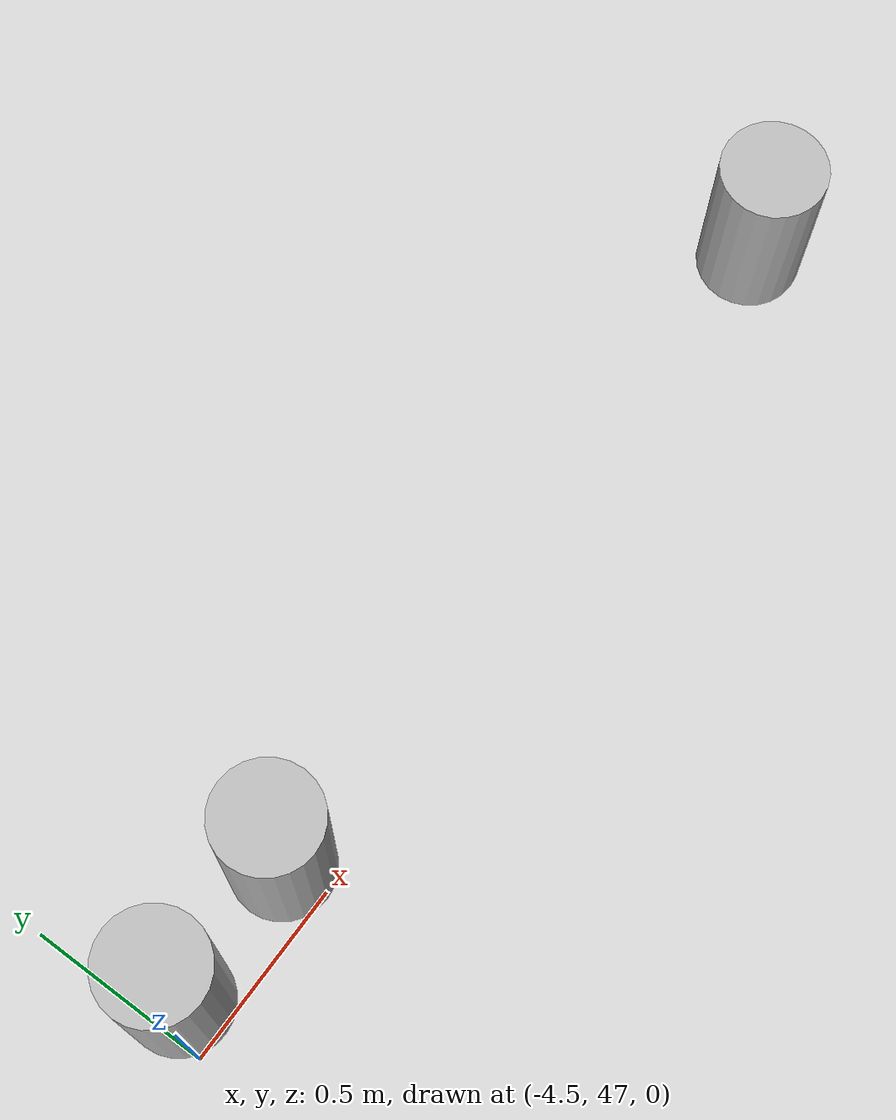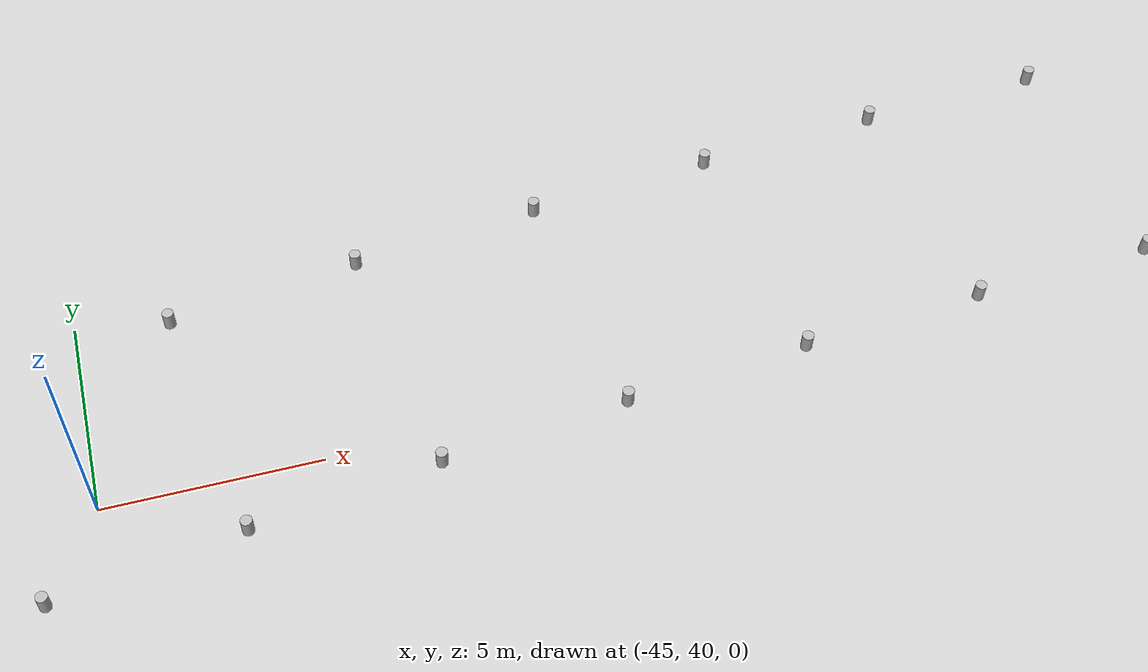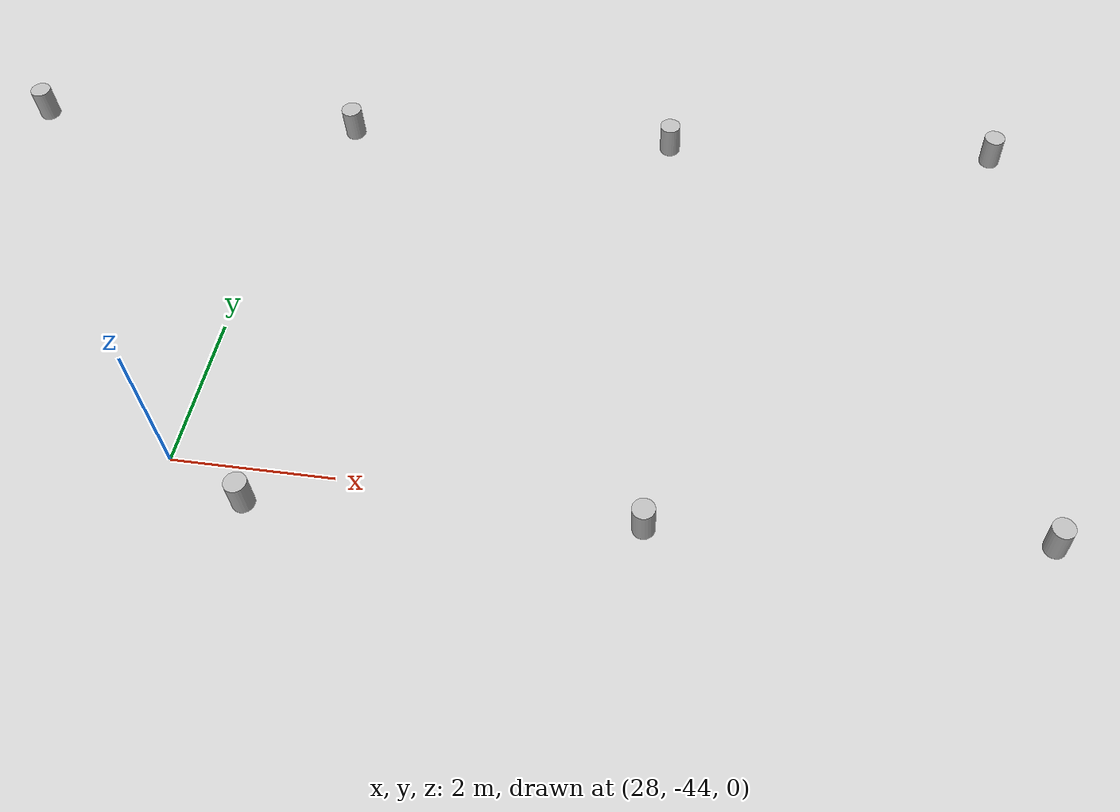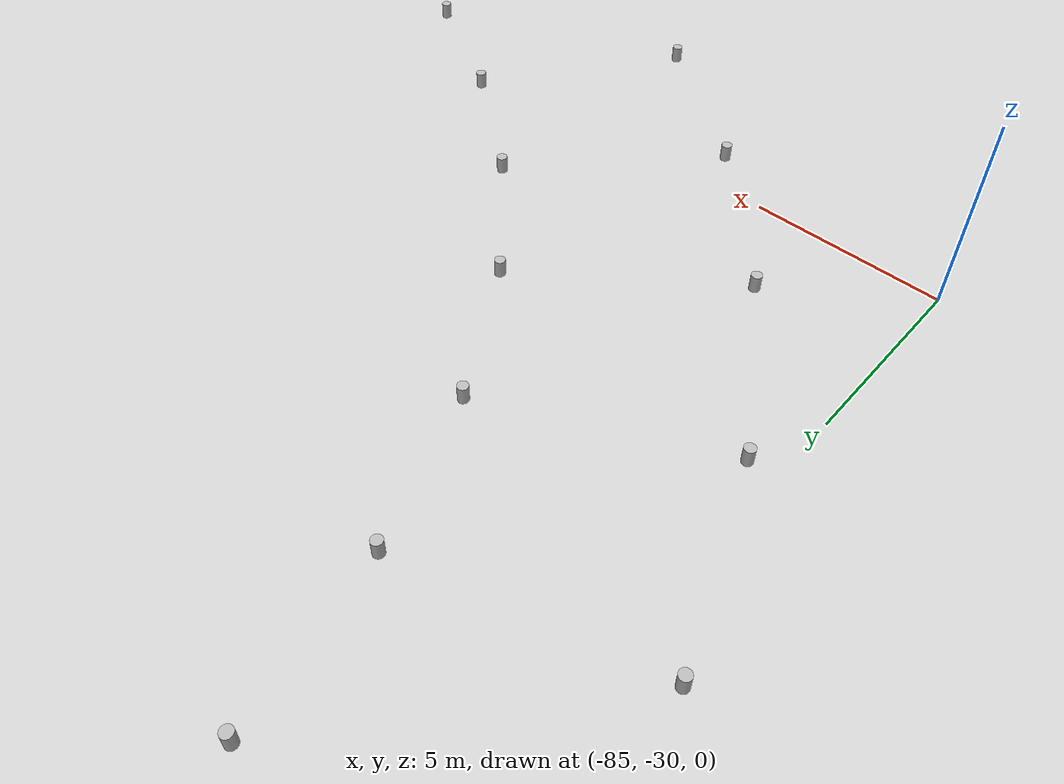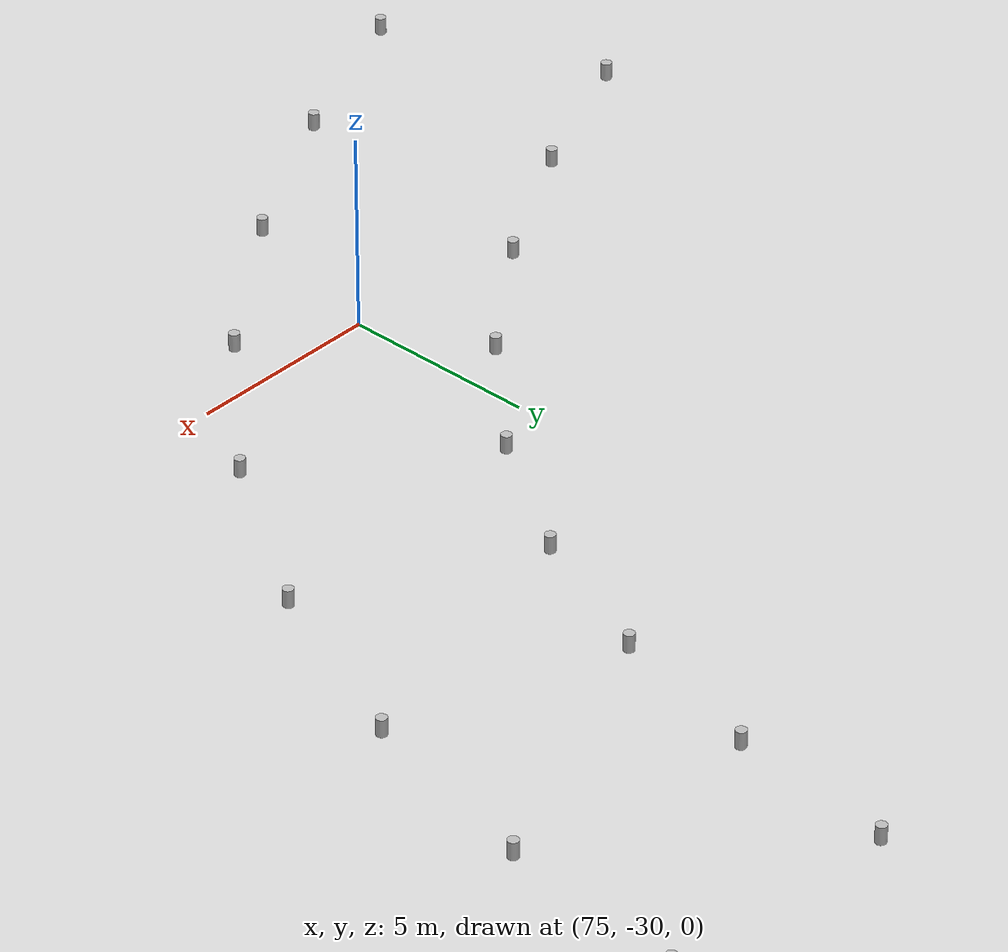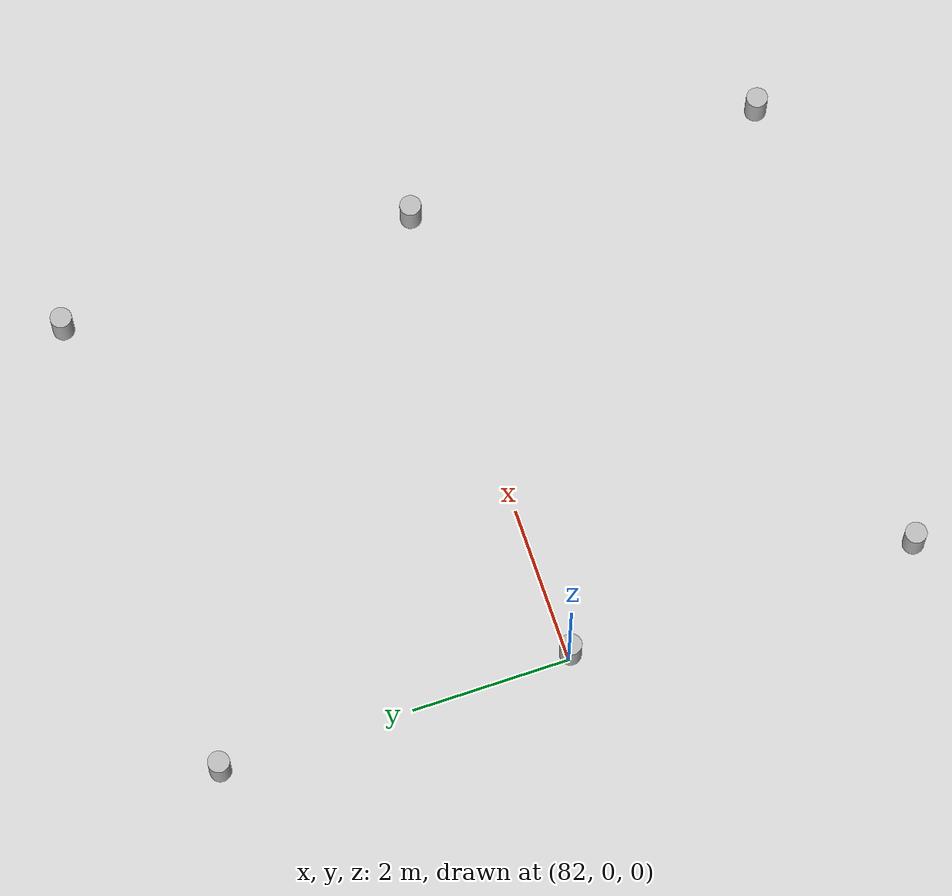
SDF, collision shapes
<?xml version='1.0'?>
<sdf version='1.6'>
  <model name='track'>

    <include>
      <pose>82.00025 -0.01351 0.225 0 0 0</pose>
      <uri>model://blue_cone</uri>
      <name>blue_cone_0</name>

      <covariance x="0.000196" y="0.000196" xy="0.0"/>

    </include>

    <include>
      <pose>81.98064 4.43128 0.225 0 0 0</pose>
      <uri>model://blue_cone</uri>
      <name>blue_cone_1</name>

      <covariance x="0.000196" y="0.000196" xy="0.0"/>

    </include>

    <include>
      <pose>81.81954 8.76029 0.225 0 0 0</pose>
      <uri>model://blue_cone</uri>
      <name>blue_cone_2</name>

      <covariance x="0.000196" y="0.000196" xy="0.0"/>

    </include>

    <include>
      <pose>81.35126 12.93457 0.225 0 0 0</pose>
      <uri>model://blue_cone</uri>
      <name>blue_cone_3</name>

      <covariance x="0.000196" y="0.000196" xy="0.0"/>

    </include>

    <include>
      <pose>80.41732 16.89663 0.225 0 0 0</pose>
      <uri>model://blue_cone</uri>
      <name>blue_cone_4</name>

      <covariance x="0.000196" y="0.000196" xy="0.0"/>

    </include>

    <include>
      <pose>78.89856 20.56983 0.225 0 0 0</pose>
      <uri>model://blue_cone</uri>
      <name>blue_cone_5</name>

      <covariance x="0.000196" y="0.000196" xy="0.0"/>

    </include>

    <include>
      <pose>76.75078 23.87936 0.225 0 0 0</pose>
      <uri>model://blue_cone</uri>
      <name>blue_cone_6</name>

      <covariance x="0.000196" y="0.000196" xy="0.0"/>

    </include>

    <include>
      <pose>74.01745 26.7798 0.225 0 0 0</pose>
      <uri>model://blue_cone</uri>
      <name>blue_cone_7</name>

      <covariance x="0.000196" y="0.000196" xy="0.0"/>

    </include>

    <include>
      <pose>70.8021 29.26676 0.225 0 0 0</pose>
      <uri>model://blue_cone</uri>
      <name>blue_cone_8</name>

      <covariance x="0.000196" y="0.000196" xy="0.0"/>

    </include>

    <include>
      <pose>67.22381 31.36861 0.225 0 0 0</pose>
      <uri>model://blue_cone</uri>
      <name>blue_cone_9</name>

      <covariance x="0.000196" y="0.000196" xy="0.0"/>

    </include>

    <include>
      <pose>63.3862 33.13107 0.225 0 0 0</pose>
      <uri>model://blue_cone</uri>
      <name>blue_cone_10</name>

      <covariance x="0.000196" y="0.000196" xy="0.0"/>

    </include>

    <include>
      <pose>59.36732 34.6042 0.225 0 0 0</pose>
      <uri>model://blue_cone</uri>
      <name>blue_cone_11</name>

      <covariance x="0.000196" y="0.000196" xy="0.0"/>

    </include>

    <include>
      <pose>55.22191 35.83482 0.225 0 0 0</pose>
      <uri>model://blue_cone</uri>
      <name>blue_cone_12</name>

      <covariance x="0.000196" y="0.000196" xy="0.0"/>

    </include>

    <include>
      <pose>50.98743 36.86356 0.225 0 0 0</pose>
      <uri>model://blue_cone</uri>
      <name>blue_cone_13</name>

      <covariance x="0.000196" y="0.000196" xy="0.0"/>

    </include>

    <include>
      <pose>46.68943 37.72441 0.225 0 0 0</pose>
      <uri>model://blue_cone</uri>
      <name>blue_cone_14</name>

      <covariance x="0.000196" y="0.000196" xy="0.0"/>

    </include>

    <include>
      <pose>42.34562 38.44522 0.225 0 0 0</pose>
      <uri>model://blue_cone</uri>
      <name>blue_cone_15</name>

      <covariance x="0.000196" y="0.000196" xy="0.0"/>

    </include>

    <include>
      <pose>37.96845 39.04848 0.225 0 0 0</pose>
      <uri>model://blue_cone</uri>
      <name>blue_cone_16</name>

      <covariance x="0.000196" y="0.000196" xy="0.0"/>

    </include>

    <include>
      <pose>33.5669 39.55201 0.225 0 0 0</pose>
      <uri>model://blue_cone</uri>
      <name>blue_cone_17</name>

      <covariance x="0.000196" y="0.000196" xy="0.0"/>

    </include>

    <include>
      <pose>29.14755 39.96956 0.225 0 0 0</pose>
      <uri>model://blue_cone</uri>
      <name>blue_cone_18</name>

      <covariance x="0.000196" y="0.000196" xy="0.0"/>

    </include>

    <include>
      <pose>24.71527 40.31142 0.225 0 0 0</pose>
      <uri>model://blue_cone</uri>
      <name>blue_cone_19</name>

      <covariance x="0.000196" y="0.000196" xy="0.0"/>

    </include>

    <include>
      <pose>20.27365 40.58507 0.225 0 0 0</pose>
      <uri>model://blue_cone</uri>
      <name>blue_cone_20</name>

      <covariance x="0.000196" y="0.000196" xy="0.0"/>

    </include>

    <include>
      <pose>15.8252 40.79595 0.225 0 0 0</pose>
      <uri>model://blue_cone</uri>
      <name>blue_cone_21</name>

      <covariance x="0.000196" y="0.000196" xy="0.0"/>

    </include>

    <include>
      <pose>11.37151 40.94831 0.225 0 0 0</pose>
      <uri>model://blue_cone</uri>
      <name>blue_cone_22</name>

      <covariance x="0.000196" y="0.000196" xy="0.0"/>

    </include>

    <include>
      <pose>6.91346 41.04604 0.225 0 0 0</pose>
      <uri>model://blue_cone</uri>
      <name>blue_cone_23</name>

      <covariance x="0.000196" y="0.000196" xy="0.0"/>

    </include>

    <include>
      <pose>2.4514 41.09349 0.225 0 0 0</pose>
      <uri>model://blue_cone</uri>
      <name>blue_cone_24</name>

      <covariance x="0.000196" y="0.000196" xy="0.0"/>

    </include>

    <include>
      <pose>-2.01274 41.09562 0.225 0 0 0</pose>
      <uri>model://blue_cone</uri>
      <name>blue_cone_25</name>

      <covariance x="0.000196" y="0.000196" xy="0.0"/>

    </include>

    <include>
      <pose>-6.47515 41.05285 0.225 0 0 0</pose>
      <uri>model://blue_cone</uri>
      <name>blue_cone_26</name>

      <covariance x="0.000196" y="0.000196" xy="0.0"/>

    </include>

    <include>
      <pose>-10.93361 40.96026 0.225 0 0 0</pose>
      <uri>model://blue_cone</uri>
      <name>blue_cone_27</name>

      <covariance x="0.000196" y="0.000196" xy="0.0"/>

    </include>

    <include>
      <pose>-15.38775 40.81345 0.225 0 0 0</pose>
      <uri>model://blue_cone</uri>
      <name>blue_cone_28</name>

      <covariance x="0.000196" y="0.000196" xy="0.0"/>

    </include>

    <include>
      <pose>-19.83678 40.6085 0.225 0 0 0</pose>
      <uri>model://blue_cone</uri>
      <name>blue_cone_29</name>

      <covariance x="0.000196" y="0.000196" xy="0.0"/>

    </include>

    <include>
      <pose>-24.27916 40.34123 0.225 0 0 0</pose>
      <uri>model://blue_cone</uri>
      <name>blue_cone_30</name>

      <covariance x="0.000196" y="0.000196" xy="0.0"/>

    </include>

    <include>
      <pose>-28.7125 40.00637 0.225 0 0 0</pose>
      <uri>model://blue_cone</uri>
      <name>blue_cone_31</name>

      <covariance x="0.000196" y="0.000196" xy="0.0"/>

    </include>

    <include>
      <pose>-33.13331 39.59666 0.225 0 0 0</pose>
      <uri>model://blue_cone</uri>
      <name>blue_cone_32</name>

      <covariance x="0.000196" y="0.000196" xy="0.0"/>

    </include>

    <include>
      <pose>-37.53687 39.10213 0.225 0 0 0</pose>
      <uri>model://blue_cone</uri>
      <name>blue_cone_33</name>

      <covariance x="0.000196" y="0.000196" xy="0.0"/>

    </include>

    <include>
      <pose>-41.91679 38.50938 0.225 0 0 0</pose>
      <uri>model://blue_cone</uri>
      <name>blue_cone_34</name>

      <covariance x="0.000196" y="0.000196" xy="0.0"/>

    </include>

    <include>
      <pose>-46.26437 37.80104 0.225 0 0 0</pose>
      <uri>model://blue_cone</uri>
      <name>blue_cone_35</name>

      <covariance x="0.000196" y="0.000196" xy="0.0"/>

    </include>

    <include>
      <pose>-50.56754 36.9551 0.225 0 0 0</pose>
      <uri>model://blue_cone</uri>
      <name>blue_cone_36</name>

      <covariance x="0.000196" y="0.000196" xy="0.0"/>

    </include>

    <include>
      <pose>-54.80925 35.94426 0.225 0 0 0</pose>
      <uri>model://blue_cone</uri>
      <name>blue_cone_37</name>

      <covariance x="0.000196" y="0.000196" xy="0.0"/>

    </include>

    <include>
      <pose>-58.96484 34.73516 0.225 0 0 0</pose>
      <uri>model://blue_cone</uri>
      <name>blue_cone_38</name>

      <covariance x="0.000196" y="0.000196" xy="0.0"/>

    </include>

    <include>
      <pose>-62.99825 33.28785 0.225 0 0 0</pose>
      <uri>model://blue_cone</uri>
      <name>blue_cone_39</name>

      <covariance x="0.000196" y="0.000196" xy="0.0"/>

    </include>

    <include>
      <pose>-66.85671 31.55603 0.225 0 0 0</pose>
      <uri>model://blue_cone</uri>
      <name>blue_cone_40</name>

      <covariance x="0.000196" y="0.000196" xy="0.0"/>

    </include>

    <include>
      <pose>-70.46469 29.48971 0.225 0 0 0</pose>
      <uri>model://blue_cone</uri>
      <name>blue_cone_41</name>

      <covariance x="0.000196" y="0.000196" xy="0.0"/>

    </include>

    <include>
      <pose>-73.72089 27.04226 0.225 0 0 0</pose>
      <uri>model://blue_cone</uri>
      <name>blue_cone_42</name>

      <covariance x="0.000196" y="0.000196" xy="0.0"/>

    </include>

    <include>
      <pose>-76.50676 24.18289 0.225 0 0 0</pose>
      <uri>model://blue_cone</uri>
      <name>blue_cone_43</name>

      <covariance x="0.000196" y="0.000196" xy="0.0"/>

    </include>

    <include>
      <pose>-78.71531 20.9122 0.225 0 0 0</pose>
      <uri>model://blue_cone</uri>
      <name>blue_cone_44</name>

      <covariance x="0.000196" y="0.000196" xy="0.0"/>

    </include>

    <include>
      <pose>-80.29538 17.27172 0.225 0 0 0</pose>
      <uri>model://blue_cone</uri>
      <name>blue_cone_45</name>

      <covariance x="0.000196" y="0.000196" xy="0.0"/>

    </include>

    <include>
      <pose>-81.28247 13.33446 0.225 0 0 0</pose>
      <uri>model://blue_cone</uri>
      <name>blue_cone_46</name>

      <covariance x="0.000196" y="0.000196" xy="0.0"/>

    </include>

    <include>
      <pose>-81.78985 9.1781 0.225 0 0 0</pose>
      <uri>model://blue_cone</uri>
      <name>blue_cone_47</name>

      <covariance x="0.000196" y="0.000196" xy="0.0"/>

    </include>

    <include>
      <pose>-81.9737 4.86237 0.225 0 0 0</pose>
      <uri>model://blue_cone</uri>
      <name>blue_cone_48</name>

      <covariance x="0.000196" y="0.000196" xy="0.0"/>

    </include>

    <include>
      <pose>-82.00024 0.43756 0.225 0 0 0</pose>
      <uri>model://blue_cone</uri>
      <name>blue_cone_49</name>

      <covariance x="0.000196" y="0.000196" xy="0.0"/>

    </include>

    <include>
      <pose>-81.9856 -3.99829 0.225 0 0 0</pose>
      <uri>model://blue_cone</uri>
      <name>blue_cone_50</name>

      <covariance x="0.000196" y="0.000196" xy="0.0"/>

    </include>

    <include>
      <pose>-81.84407 -8.33887 0.225 0 0 0</pose>
      <uri>model://blue_cone</uri>
      <name>blue_cone_51</name>

      <covariance x="0.000196" y="0.000196" xy="0.0"/>

    </include>

    <include>
      <pose>-81.40951 -12.52701 0.225 0 0 0</pose>
      <uri>model://blue_cone</uri>
      <name>blue_cone_52</name>

      <covariance x="0.000196" y="0.000196" xy="0.0"/>

    </include>

    <include>
      <pose>-80.51937 -16.50525 0.225 0 0 0</pose>
      <uri>model://blue_cone</uri>
      <name>blue_cone_53</name>

      <covariance x="0.000196" y="0.000196" xy="0.0"/>

    </include>

    <include>
      <pose>-79.04684 -20.195 0.225 0 0 0</pose>
      <uri>model://blue_cone</uri>
      <name>blue_cone_54</name>

      <covariance x="0.000196" y="0.000196" xy="0.0"/>

    </include>

    <include>
      <pose>-76.93836 -23.51671 0.225 0 0 0</pose>
      <uri>model://blue_cone</uri>
      <name>blue_cone_55</name>

      <covariance x="0.000196" y="0.000196" xy="0.0"/>

    </include>

    <include>
      <pose>-74.23096 -26.41901 0.225 0 0 0</pose>
      <uri>model://blue_cone</uri>
      <name>blue_cone_56</name>

      <covariance x="0.000196" y="0.000196" xy="0.0"/>

    </include>

    <include>
      <pose>-71.0273 -28.89294 0.225 0 0 0</pose>
      <uri>model://blue_cone</uri>
      <name>blue_cone_57</name>

      <covariance x="0.000196" y="0.000196" xy="0.0"/>

    </include>

    <include>
      <pose>-67.44948 -30.96449 0.225 0 0 0</pose>
      <uri>model://blue_cone</uri>
      <name>blue_cone_58</name>

      <covariance x="0.000196" y="0.000196" xy="0.0"/>

    </include>

    <include>
      <pose>-63.60525 -32.67864 0.225 0 0 0</pose>
      <uri>model://blue_cone</uri>
      <name>blue_cone_59</name>

      <covariance x="0.000196" y="0.000196" xy="0.0"/>

    </include>

    <include>
      <pose>-59.57604 -34.08556 0.225 0 0 0</pose>
      <uri>model://blue_cone</uri>
      <name>blue_cone_60</name>

      <covariance x="0.000196" y="0.000196" xy="0.0"/>

    </include>

    <include>
      <pose>-55.41888 -35.23246 0.225 0 0 0</pose>
      <uri>model://blue_cone</uri>
      <name>blue_cone_61</name>

      <covariance x="0.000196" y="0.000196" xy="0.0"/>

    </include>

    <include>
      <pose>-51.17254 -36.16045 0.225 0 0 0</pose>
      <uri>model://blue_cone</uri>
      <name>blue_cone_62</name>

      <covariance x="0.000196" y="0.000196" xy="0.0"/>

    </include>

    <include>
      <pose>-46.86327 -36.90428 0.225 0 0 0</pose>
      <uri>model://blue_cone</uri>
      <name>blue_cone_63</name>

      <covariance x="0.000196" y="0.000196" xy="0.0"/>

    </include>

    <include>
      <pose>-42.5089 -37.49307 0.225 0 0 0</pose>
      <uri>model://blue_cone</uri>
      <name>blue_cone_64</name>

      <covariance x="0.000196" y="0.000196" xy="0.0"/>

    </include>

    <include>
      <pose>-38.12168 -37.95139 0.225 0 0 0</pose>
      <uri>model://blue_cone</uri>
      <name>blue_cone_65</name>

      <covariance x="0.000196" y="0.000196" xy="0.0"/>

    </include>

    <include>
      <pose>-33.71006 -38.30025 0.225 0 0 0</pose>
      <uri>model://blue_cone</uri>
      <name>blue_cone_66</name>

      <covariance x="0.000196" y="0.000196" xy="0.0"/>

    </include>

    <include>
      <pose>-29.27988 -38.55793 0.225 0 0 0</pose>
      <uri>model://blue_cone</uri>
      <name>blue_cone_67</name>

      <covariance x="0.000196" y="0.000196" xy="0.0"/>

    </include>

    <include>
      <pose>-24.83519 -38.74061 0.225 0 0 0</pose>
      <uri>model://blue_cone</uri>
      <name>blue_cone_68</name>

      <covariance x="0.000196" y="0.000196" xy="0.0"/>

    </include>

    <include>
      <pose>-20.37877 -38.86288 0.225 0 0 0</pose>
      <uri>model://blue_cone</uri>
      <name>blue_cone_69</name>

      <covariance x="0.000196" y="0.000196" xy="0.0"/>

    </include>

    <include>
      <pose>-15.91252 -38.93808 0.225 0 0 0</pose>
      <uri>model://blue_cone</uri>
      <name>blue_cone_70</name>

      <covariance x="0.000196" y="0.000196" xy="0.0"/>

    </include>

    <include>
      <pose>-11.43774 -38.97852 0.225 0 0 0</pose>
      <uri>model://blue_cone</uri>
      <name>blue_cone_71</name>

      <covariance x="0.000196" y="0.000196" xy="0.0"/>

    </include>

    <include>
      <pose>-6.95544 -38.99563 0.225 0 0 0</pose>
      <uri>model://blue_cone</uri>
      <name>blue_cone_72</name>

      <covariance x="0.000196" y="0.000196" xy="0.0"/>

    </include>

    <include>
      <pose>-2.46665 -38.99984 0.225 0 0 0</pose>
      <uri>model://blue_cone</uri>
      <name>blue_cone_73</name>

      <covariance x="0.000196" y="0.000196" xy="0.0"/>

    </include>

    <include>
      <pose>2.02528 -38.99992 0.225 0 0 0</pose>
      <uri>model://blue_cone</uri>
      <name>blue_cone_74</name>

      <covariance x="0.000196" y="0.000196" xy="0.0"/>

    </include>

    <include>
      <pose>6.5146 -38.99646 0.225 0 0 0</pose>
      <uri>model://blue_cone</uri>
      <name>blue_cone_75</name>

      <covariance x="0.000196" y="0.000196" xy="0.0"/>

    </include>

    <include>
      <pose>10.99759 -38.98106 0.225 0 0 0</pose>
      <uri>model://blue_cone</uri>
      <name>blue_cone_76</name>

      <covariance x="0.000196" y="0.000196" xy="0.0"/>

    </include>

    <include>
      <pose>15.47315 -38.9434 0.225 0 0 0</pose>
      <uri>model://blue_cone</uri>
      <name>blue_cone_77</name>

      <covariance x="0.000196" y="0.000196" xy="0.0"/>

    </include>

    <include>
      <pose>19.94029 -38.87215 0.225 0 0 0</pose>
      <uri>model://blue_cone</uri>
      <name>blue_cone_78</name>

      <covariance x="0.000196" y="0.000196" xy="0.0"/>

    </include>

    <include>
      <pose>24.39775 -38.75508 0.225 0 0 0</pose>
      <uri>model://blue_cone</uri>
      <name>blue_cone_79</name>

      <covariance x="0.000196" y="0.000196" xy="0.0"/>

    </include>

    <include>
      <pose>28.84369 -38.57896 0.225 0 0 0</pose>
      <uri>model://blue_cone</uri>
      <name>blue_cone_80</name>

      <covariance x="0.000196" y="0.000196" xy="0.0"/>

    </include>

    <include>
      <pose>33.27545 -38.32933 0.225 0 0 0</pose>
      <uri>model://blue_cone</uri>
      <name>blue_cone_81</name>

      <covariance x="0.000196" y="0.000196" xy="0.0"/>

    </include>

    <include>
      <pose>37.68912 -37.9902 0.225 0 0 0</pose>
      <uri>model://blue_cone</uri>
      <name>blue_cone_82</name>

      <covariance x="0.000196" y="0.000196" xy="0.0"/>

    </include>

    <include>
      <pose>42.07907 -37.54352 0.225 0 0 0</pose>
      <uri>model://blue_cone</uri>
      <name>blue_cone_83</name>

      <covariance x="0.000196" y="0.000196" xy="0.0"/>

    </include>

    <include>
      <pose>46.43713 -36.96858 0.225 0 0 0</pose>
      <uri>model://blue_cone</uri>
      <name>blue_cone_84</name>

      <covariance x="0.000196" y="0.000196" xy="0.0"/>

    </include>

    <include>
      <pose>50.75152 -36.24119 0.225 0 0 0</pose>
      <uri>model://blue_cone</uri>
      <name>blue_cone_85</name>

      <covariance x="0.000196" y="0.000196" xy="0.0"/>

    </include>

    <include>
      <pose>55.00504 -35.33274 0.225 0 0 0</pose>
      <uri>model://blue_cone</uri>
      <name>blue_cone_86</name>

      <covariance x="0.000196" y="0.000196" xy="0.0"/>

    </include>

    <include>
      <pose>59.17244 -34.20907 0.225 0 0 0</pose>
      <uri>model://blue_cone</uri>
      <name>blue_cone_87</name>

      <covariance x="0.000196" y="0.000196" xy="0.0"/>

    </include>

    <include>
      <pose>63.2164 -32.82971 0.225 0 0 0</pose>
      <uri>model://blue_cone</uri>
      <name>blue_cone_88</name>

      <covariance x="0.000196" y="0.000196" xy="0.0"/>

    </include>

    <include>
      <pose>67.08198 -31.14796 0.225 0 0 0</pose>
      <uri>model://blue_cone</uri>
      <name>blue_cone_89</name>

      <covariance x="0.000196" y="0.000196" xy="0.0"/>

    </include>

    <include>
      <pose>70.69035 -29.1137 0.225 0 0 0</pose>
      <uri>model://blue_cone</uri>
      <name>blue_cone_90</name>

      <covariance x="0.000196" y="0.000196" xy="0.0"/>

    </include>

    <include>
      <pose>73.93615 -26.6809 0.225 0 0 0</pose>
      <uri>model://blue_cone</uri>
      <name>blue_cone_91</name>

      <covariance x="0.000196" y="0.000196" xy="0.0"/>

    </include>

    <include>
      <pose>76.69754 -23.82097 0.225 0 0 0</pose>
      <uri>model://blue_cone</uri>
      <name>blue_cone_92</name>

      <covariance x="0.000196" y="0.000196" xy="0.0"/>

    </include>

    <include>
      <pose>78.8679 -20.53887 0.225 0 0 0</pose>
      <uri>model://blue_cone</uri>
      <name>blue_cone_93</name>

      <covariance x="0.000196" y="0.000196" xy="0.0"/>

    </include>

    <include>
      <pose>80.40201 -16.882 0.225 0 0 0</pose>
      <uri>model://blue_cone</uri>
      <name>blue_cone_94</name>

      <covariance x="0.000196" y="0.000196" xy="0.0"/>

    </include>

    <include>
      <pose>81.34467 -12.9284 0.225 0 0 0</pose>
      <uri>model://blue_cone</uri>
      <name>blue_cone_95</name>

      <covariance x="0.000196" y="0.000196" xy="0.0"/>

    </include>

    <include>
      <pose>81.8171 -8.75793 0.225 0 0 0</pose>
      <uri>model://blue_cone</uri>
      <name>blue_cone_96</name>

      <covariance x="0.000196" y="0.000196" xy="0.0"/>

    </include>

    <include>
      <pose>81.97991 -4.4304 0.225 0 0 0</pose>
      <uri>model://blue_cone</uri>
      <name>blue_cone_97</name>

      <covariance x="0.000196" y="0.000196" xy="0.0"/>

    </include>

    <include>
      <pose>88.00019 0.01351 0.225 0 0 0</pose>
      <uri>model://yellow_cone</uri>
      <name>yellow_cone_98</name>

      <covariance x="0.000196" y="0.000196" xy="0.0"/>

    </include>

    <include>
      <pose>87.97932 4.55754 0.225 0 0 0</pose>
      <uri>model://yellow_cone</uri>
      <name>yellow_cone_99</name>

      <covariance x="0.000196" y="0.000196" xy="0.0"/>

    </include>

    <include>
      <pose>87.80265 9.2101 0.225 0 0 0</pose>
      <uri>model://yellow_cone</uri>
      <name>yellow_cone_100</name>

      <covariance x="0.000196" y="0.000196" xy="0.0"/>

    </include>

    <include>
      <pose>87.26221 13.96445 0.225 0 0 0</pose>
      <uri>model://yellow_cone</uri>
      <name>yellow_cone_101</name>

      <covariance x="0.000196" y="0.000196" xy="0.0"/>

    </include>

    <include>
      <pose>86.12647 18.74208 0.225 0 0 0</pose>
      <uri>model://yellow_cone</uri>
      <name>yellow_cone_102</name>

      <covariance x="0.000196" y="0.000196" xy="0.0"/>

    </include>

    <include>
      <pose>84.20897 23.3626 0.225 0 0 0</pose>
      <uri>model://yellow_cone</uri>
      <name>yellow_cone_103</name>

      <covariance x="0.000196" y="0.000196" xy="0.0"/>

    </include>

    <include>
      <pose>81.4712 27.58309 0.225 0 0 0</pose>
      <uri>model://yellow_cone</uri>
      <name>yellow_cone_104</name>

      <covariance x="0.000196" y="0.000196" xy="0.0"/>

    </include>

    <include>
      <pose>78.05177 31.221 0.225 0 0 0</pose>
      <uri>model://yellow_cone</uri>
      <name>yellow_cone_105</name>

      <covariance x="0.000196" y="0.000196" xy="0.0"/>

    </include>

    <include>
      <pose>74.16699 34.23441 0.225 0 0 0</pose>
      <uri>model://yellow_cone</uri>
      <name>yellow_cone_106</name>

      <covariance x="0.000196" y="0.000196" xy="0.0"/>

    </include>

    <include>
      <pose>70.00114 36.6871 0.225 0 0 0</pose>
      <uri>model://yellow_cone</uri>
      <name>yellow_cone_107</name>

      <covariance x="0.000196" y="0.000196" xy="0.0"/>

    </include>

    <include>
      <pose>65.67403 38.67776 0.225 0 0 0</pose>
      <uri>model://yellow_cone</uri>
      <name>yellow_cone_108</name>

      <covariance x="0.000196" y="0.000196" xy="0.0"/>

    </include>

    <include>
      <pose>61.25542 40.29937 0.225 0 0 0</pose>
      <uri>model://yellow_cone</uri>
      <name>yellow_cone_109</name>

      <covariance x="0.000196" y="0.000196" xy="0.0"/>

    </include>

    <include>
      <pose>56.78498 41.62765 0.225 0 0 0</pose>
      <uri>model://yellow_cone</uri>
      <name>yellow_cone_110</name>

      <covariance x="0.000196" y="0.000196" xy="0.0"/>

    </include>

    <include>
      <pose>52.28545 42.72147 0.225 0 0 0</pose>
      <uri>model://yellow_cone</uri>
      <name>yellow_cone_111</name>

      <covariance x="0.000196" y="0.000196" xy="0.0"/>

    </include>

    <include>
      <pose>47.77008 43.62629 0.225 0 0 0</pose>
      <uri>model://yellow_cone</uri>
      <name>yellow_cone_112</name>

      <covariance x="0.000196" y="0.000196" xy="0.0"/>

    </include>

    <include>
      <pose>43.24654 44.37719 0.225 0 0 0</pose>
      <uri>model://yellow_cone</uri>
      <name>yellow_cone_113</name>

      <covariance x="0.000196" y="0.000196" xy="0.0"/>

    </include>

    <include>
      <pose>38.71915 45.00133 0.225 0 0 0</pose>
      <uri>model://yellow_cone</uri>
      <name>yellow_cone_114</name>

      <covariance x="0.000196" y="0.000196" xy="0.0"/>

    </include>

    <include>
      <pose>34.19014 45.51955 0.225 0 0 0</pose>
      <uri>model://yellow_cone</uri>
      <name>yellow_cone_115</name>

      <covariance x="0.000196" y="0.000196" xy="0.0"/>

    </include>

    <include>
      <pose>29.66049 45.94759 0.225 0 0 0</pose>
      <uri>model://yellow_cone</uri>
      <name>yellow_cone_116</name>

      <covariance x="0.000196" y="0.000196" xy="0.0"/>

    </include>

    <include>
      <pose>25.13049 46.29703 0.225 0 0 0</pose>
      <uri>model://yellow_cone</uri>
      <name>yellow_cone_117</name>

      <covariance x="0.000196" y="0.000196" xy="0.0"/>

    </include>

    <include>
      <pose>20.60022 46.57617 0.225 0 0 0</pose>
      <uri>model://yellow_cone</uri>
      <name>yellow_cone_118</name>

      <covariance x="0.000196" y="0.000196" xy="0.0"/>

    </include>

    <include>
      <pose>16.06984 46.79096 0.225 0 0 0</pose>
      <uri>model://yellow_cone</uri>
      <name>yellow_cone_119</name>

      <covariance x="0.000196" y="0.000196" xy="0.0"/>

    </include>

    <include>
      <pose>11.53985 46.94594 0.225 0 0 0</pose>
      <uri>model://yellow_cone</uri>
      <name>yellow_cone_120</name>

      <covariance x="0.000196" y="0.000196" xy="0.0"/>

    </include>

    <include>
      <pose>7.01112 47.04524 0.225 0 0 0</pose>
      <uri>model://yellow_cone</uri>
      <name>yellow_cone_121</name>

      <covariance x="0.000196" y="0.000196" xy="0.0"/>

    </include>

    <include>
      <pose>2.48474 47.09339 0.225 0 0 0</pose>
      <uri>model://yellow_cone</uri>
      <name>yellow_cone_122</name>

      <covariance x="0.000196" y="0.000196" xy="0.0"/>

    </include>

    <include>
      <pose>-2.04007 47.09556 0.225 0 0 0</pose>
      <uri>model://yellow_cone</uri>
      <name>yellow_cone_123</name>

      <covariance x="0.000196" y="0.000196" xy="0.0"/>

    </include>

    <include>
      <pose>-6.5662 47.05216 0.225 0 0 0</pose>
      <uri>model://yellow_cone</uri>
      <name>yellow_cone_124</name>

      <covariance x="0.000196" y="0.000196" xy="0.0"/>

    </include>

    <include>
      <pose>-11.09474 46.9581 0.225 0 0 0</pose>
      <uri>model://yellow_cone</uri>
      <name>yellow_cone_125</name>

      <covariance x="0.000196" y="0.000196" xy="0.0"/>

    </include>

    <include>
      <pose>-15.62465 46.80877 0.225 0 0 0</pose>
      <uri>model://yellow_cone</uri>
      <name>yellow_cone_126</name>

      <covariance x="0.000196" y="0.000196" xy="0.0"/>

    </include>

    <include>
      <pose>-20.15502 46.60005 0.225 0 0 0</pose>
      <uri>model://yellow_cone</uri>
      <name>yellow_cone_127</name>

      <covariance x="0.000196" y="0.000196" xy="0.0"/>

    </include>

    <include>
      <pose>-24.68532 46.32747 0.225 0 0 0</pose>
      <uri>model://yellow_cone</uri>
      <name>yellow_cone_128</name>

      <covariance x="0.000196" y="0.000196" xy="0.0"/>

    </include>

    <include>
      <pose>-29.21535 45.98526 0.225 0 0 0</pose>
      <uri>model://yellow_cone</uri>
      <name>yellow_cone_129</name>

      <covariance x="0.000196" y="0.000196" xy="0.0"/>

    </include>

    <include>
      <pose>-33.74504 45.5654 0.225 0 0 0</pose>
      <uri>model://yellow_cone</uri>
      <name>yellow_cone_130</name>

      <covariance x="0.000196" y="0.000196" xy="0.0"/>

    </include>

    <include>
      <pose>-38.27414 45.05666 0.225 0 0 0</pose>
      <uri>model://yellow_cone</uri>
      <name>yellow_cone_131</name>

      <covariance x="0.000196" y="0.000196" xy="0.0"/>

    </include>

    <include>
      <pose>-42.80176 44.44376 0.225 0 0 0</pose>
      <uri>model://yellow_cone</uri>
      <name>yellow_cone_132</name>

      <covariance x="0.000196" y="0.000196" xy="0.0"/>

    </include>

    <include>
      <pose>-47.32583 43.7064 0.225 0 0 0</pose>
      <uri>model://yellow_cone</uri>
      <name>yellow_cone_133</name>

      <covariance x="0.000196" y="0.000196" xy="0.0"/>

    </include>

    <include>
      <pose>-51.84227 42.81812 0.225 0 0 0</pose>
      <uri>model://yellow_cone</uri>
      <name>yellow_cone_134</name>

      <covariance x="0.000196" y="0.000196" xy="0.0"/>

    </include>

    <include>
      <pose>-56.34383 41.74469 0.225 0 0 0</pose>
      <uri>model://yellow_cone</uri>
      <name>yellow_cone_135</name>

      <covariance x="0.000196" y="0.000196" xy="0.0"/>

    </include>

    <include>
      <pose>-60.81794 40.44182 0.225 0 0 0</pose>
      <uri>model://yellow_cone</uri>
      <name>yellow_cone_136</name>

      <covariance x="0.000196" y="0.000196" xy="0.0"/>

    </include>

    <include>
      <pose>-65.24305 38.8521 0.225 0 0 0</pose>
      <uri>model://yellow_cone</uri>
      <name>yellow_cone_137</name>

      <covariance x="0.000196" y="0.000196" xy="0.0"/>

    </include>

    <include>
      <pose>-69.58162 36.90157 0.225 0 0 0</pose>
      <uri>model://yellow_cone</uri>
      <name>yellow_cone_138</name>

      <covariance x="0.000196" y="0.000196" xy="0.0"/>

    </include>

    <include>
      <pose>-73.76764 34.49875 0.225 0 0 0</pose>
      <uri>model://yellow_cone</uri>
      <name>yellow_cone_139</name>

      <covariance x="0.000196" y="0.000196" xy="0.0"/>

    </include>

    <include>
      <pose>-77.68717 31.54433 0.225 0 0 0</pose>
      <uri>model://yellow_cone</uri>
      <name>yellow_cone_140</name>

      <covariance x="0.000196" y="0.000196" xy="0.0"/>

    </include>

    <include>
      <pose>-81.16202 27.9682 0.225 0 0 0</pose>
      <uri>model://yellow_cone</uri>
      <name>yellow_cone_141</name>

      <covariance x="0.000196" y="0.000196" xy="0.0"/>

    </include>

    <include>
      <pose>-83.97523 23.79894 0.225 0 0 0</pose>
      <uri>model://yellow_cone</uri>
      <name>yellow_cone_142</name>

      <covariance x="0.000196" y="0.000196" xy="0.0"/>

    </include>

    <include>
      <pose>-85.97475 19.20687 0.225 0 0 0</pose>
      <uri>model://yellow_cone</uri>
      <name>yellow_cone_143</name>

      <covariance x="0.000196" y="0.000196" xy="0.0"/>

    </include>

    <include>
      <pose>-87.18067 14.43502 0.225 0 0 0</pose>
      <uri>model://yellow_cone</uri>
      <name>yellow_cone_144</name>

      <covariance x="0.000196" y="0.000196" xy="0.0"/>

    </include>

    <include>
      <pose>-87.76937 9.67339 0.225 0 0 0</pose>
      <uri>model://yellow_cone</uri>
      <name>yellow_cone_145</name>

      <covariance x="0.000196" y="0.000196" xy="0.0"/>

    </include>

    <include>
      <pose>-87.97189 5.00967 0.225 0 0 0</pose>
      <uri>model://yellow_cone</uri>
      <name>yellow_cone_146</name>

      <covariance x="0.000196" y="0.000196" xy="0.0"/>

    </include>

    <include>
      <pose>-88.00024 0.44578 0.225 0 0 0</pose>
      <uri>model://yellow_cone</uri>
      <name>yellow_cone_147</name>

      <covariance x="0.000196" y="0.000196" xy="0.0"/>

    </include>

    <include>
      <pose>-87.98461 -4.10725 0.225 0 0 0</pose>
      <uri>model://yellow_cone</uri>
      <name>yellow_cone_148</name>

      <covariance x="0.000196" y="0.000196" xy="0.0"/>

    </include>

    <include>
      <pose>-87.82998 -8.74987 0.225 0 0 0</pose>
      <uri>model://yellow_cone</uri>
      <name>yellow_cone_149</name>

      <covariance x="0.000196" y="0.000196" xy="0.0"/>

    </include>

    <include>
      <pose>-87.3303 -13.49871 0.225 0 0 0</pose>
      <uri>model://yellow_cone</uri>
      <name>yellow_cone_150</name>

      <covariance x="0.000196" y="0.000196" xy="0.0"/>

    </include>

    <include>
      <pose>-86.24987 -18.28328 0.225 0 0 0</pose>
      <uri>model://yellow_cone</uri>
      <name>yellow_cone_151</name>

      <covariance x="0.000196" y="0.000196" xy="0.0"/>

    </include>

    <include>
      <pose>-84.38794 -22.92861 0.225 0 0 0</pose>
      <uri>model://yellow_cone</uri>
      <name>yellow_cone_152</name>

      <covariance x="0.000196" y="0.000196" xy="0.0"/>

    </include>

    <include>
      <pose>-81.68651 -27.18482 0.225 0 0 0</pose>
      <uri>model://yellow_cone</uri>
      <name>yellow_cone_153</name>

      <covariance x="0.000196" y="0.000196" xy="0.0"/>

    </include>

    <include>
      <pose>-78.2749 -30.85146 0.225 0 0 0</pose>
      <uri>model://yellow_cone</uri>
      <name>yellow_cone_154</name>

      <covariance x="0.000196" y="0.000196" xy="0.0"/>

    </include>

    <include>
      <pose>-74.37487 -33.87227 0.225 0 0 0</pose>
      <uri>model://yellow_cone</uri>
      <name>yellow_cone_155</name>

      <covariance x="0.000196" y="0.000196" xy="0.0"/>

    </include>

    <include>
      <pose>-70.18076 -36.30678 0.225 0 0 0</pose>
      <uri>model://yellow_cone</uri>
      <name>yellow_cone_156</name>

      <covariance x="0.000196" y="0.000196" xy="0.0"/>

    </include>

    <include>
      <pose>-65.81955 -38.2551 0.225 0 0 0</pose>
      <uri>model://yellow_cone</uri>
      <name>yellow_cone_157</name>

      <covariance x="0.000196" y="0.000196" xy="0.0"/>

    </include>

    <include>
      <pose>-61.36487 -39.8127 0.225 0 0 0</pose>
      <uri>model://yellow_cone</uri>
      <name>yellow_cone_158</name>

      <covariance x="0.000196" y="0.000196" xy="0.0"/>

    </include>

    <include>
      <pose>-56.85838 -41.05722 0.225 0 0 0</pose>
      <uri>model://yellow_cone</uri>
      <name>yellow_cone_159</name>

      <covariance x="0.000196" y="0.000196" xy="0.0"/>

    </include>

    <include>
      <pose>-52.32401 -42.04892 0.225 0 0 0</pose>
      <uri>model://yellow_cone</uri>
      <name>yellow_cone_160</name>

      <covariance x="0.000196" y="0.000196" xy="0.0"/>

    </include>

    <include>
      <pose>-47.77596 -42.83446 0.225 0 0 0</pose>
      <uri>model://yellow_cone</uri>
      <name>yellow_cone_161</name>

      <covariance x="0.000196" y="0.000196" xy="0.0"/>

    </include>

    <include>
      <pose>-43.22286 -43.45044 0.225 0 0 0</pose>
      <uri>model://yellow_cone</uri>
      <name>yellow_cone_162</name>

      <covariance x="0.000196" y="0.000196" xy="0.0"/>

    </include>

    <include>
      <pose>-38.67005 -43.92627 0.225 0 0 0</pose>
      <uri>model://yellow_cone</uri>
      <name>yellow_cone_163</name>

      <covariance x="0.000196" y="0.000196" xy="0.0"/>

    </include>

    <include>
      <pose>-34.12086 -44.28617 0.225 0 0 0</pose>
      <uri>model://yellow_cone</uri>
      <name>yellow_cone_164</name>

      <covariance x="0.000196" y="0.000196" xy="0.0"/>

    </include>

    <include>
      <pose>-29.57735 -44.55055 0.225 0 0 0</pose>
      <uri>model://yellow_cone</uri>
      <name>yellow_cone_165</name>

      <covariance x="0.000196" y="0.000196" xy="0.0"/>

    </include>

    <include>
      <pose>-25.04072 -44.73709 0.225 0 0 0</pose>
      <uri>model://yellow_cone</uri>
      <name>yellow_cone_166</name>

      <covariance x="0.000196" y="0.000196" xy="0.0"/>

    </include>

    <include>
      <pose>-20.51159 -44.86141 0.225 0 0 0</pose>
      <uri>model://yellow_cone</uri>
      <name>yellow_cone_167</name>

      <covariance x="0.000196" y="0.000196" xy="0.0"/>

    </include>

    <include>
      <pose>-15.99016 -44.93757 0.225 0 0 0</pose>
      <uri>model://yellow_cone</uri>
      <name>yellow_cone_168</name>

      <covariance x="0.000196" y="0.000196" xy="0.0"/>

    </include>

    <include>
      <pose>-11.47633 -44.9784 0.225 0 0 0</pose>
      <uri>model://yellow_cone</uri>
      <name>yellow_cone_169</name>

      <covariance x="0.000196" y="0.000196" xy="0.0"/>

    </include>

    <include>
      <pose>-6.96971 -44.99562 0.225 0 0 0</pose>
      <uri>model://yellow_cone</uri>
      <name>yellow_cone_170</name>

      <covariance x="0.000196" y="0.000196" xy="0.0"/>

    </include>

    <include>
      <pose>-2.46951 -44.99984 0.225 0 0 0</pose>
      <uri>model://yellow_cone</uri>
      <name>yellow_cone_171</name>

      <covariance x="0.000196" y="0.000196" xy="0.0"/>

    </include>

    <include>
      <pose>2.02754 -44.99992 0.225 0 0 0</pose>
      <uri>model://yellow_cone</uri>
      <name>yellow_cone_172</name>

      <covariance x="0.000196" y="0.000196" xy="0.0"/>

    </include>

    <include>
      <pose>6.52722 -44.99645 0.225 0 0 0</pose>
      <uri>model://yellow_cone</uri>
      <name>yellow_cone_173</name>

      <covariance x="0.000196" y="0.000196" xy="0.0"/>

    </include>

    <include>
      <pose>11.03315 -44.98096 0.225 0 0 0</pose>
      <uri>model://yellow_cone</uri>
      <name>yellow_cone_174</name>

      <covariance x="0.000196" y="0.000196" xy="0.0"/>

    </include>

    <include>
      <pose>15.54625 -44.94295 0.225 0 0 0</pose>
      <uri>model://yellow_cone</uri>
      <name>yellow_cone_175</name>

      <covariance x="0.000196" y="0.000196" xy="0.0"/>

    </include>

    <include>
      <pose>20.06693 -44.87081 0.225 0 0 0</pose>
      <uri>model://yellow_cone</uri>
      <name>yellow_cone_176</name>

      <covariance x="0.000196" y="0.000196" xy="0.0"/>

    </include>

    <include>
      <pose>24.59531 -44.75183 0.225 0 0 0</pose>
      <uri>model://yellow_cone</uri>
      <name>yellow_cone_177</name>

      <covariance x="0.000196" y="0.000196" xy="0.0"/>

    </include>

    <include>
      <pose>29.13122 -44.57206 0.225 0 0 0</pose>
      <uri>model://yellow_cone</uri>
      <name>yellow_cone_178</name>

      <covariance x="0.000196" y="0.000196" xy="0.0"/>

    </include>

    <include>
      <pose>33.6741 -44.31608 0.225 0 0 0</pose>
      <uri>model://yellow_cone</uri>
      <name>yellow_cone_179</name>

      <covariance x="0.000196" y="0.000196" xy="0.0"/>

    </include>

    <include>
      <pose>38.2228 -43.96642 0.225 0 0 0</pose>
      <uri>model://yellow_cone</uri>
      <name>yellow_cone_180</name>

      <covariance x="0.000196" y="0.000196" xy="0.0"/>

    </include>

    <include>
      <pose>42.77538 -43.50298 0.225 0 0 0</pose>
      <uri>model://yellow_cone</uri>
      <name>yellow_cone_181</name>

      <covariance x="0.000196" y="0.000196" xy="0.0"/>

    </include>

    <include>
      <pose>47.32865 -42.90197 0.225 0 0 0</pose>
      <uri>model://yellow_cone</uri>
      <name>yellow_cone_182</name>

      <covariance x="0.000196" y="0.000196" xy="0.0"/>

    </include>

    <include>
      <pose>51.87751 -42.13459 0.225 0 0 0</pose>
      <uri>model://yellow_cone</uri>
      <name>yellow_cone_183</name>

      <covariance x="0.000196" y="0.000196" xy="0.0"/>

    </include>

    <include>
      <pose>56.41374 -41.16502 0.225 0 0 0</pose>
      <uri>model://yellow_cone</uri>
      <name>yellow_cone_184</name>

      <covariance x="0.000196" y="0.000196" xy="0.0"/>

    </include>

    <include>
      <pose>60.92383 -39.94777 0.225 0 0 0</pose>
      <uri>model://yellow_cone</uri>
      <name>yellow_cone_185</name>

      <covariance x="0.000196" y="0.000196" xy="0.0"/>

    </include>

    <include>
      <pose>65.38507 -38.42407 0.225 0 0 0</pose>
      <uri>model://yellow_cone</uri>
      <name>yellow_cone_186</name>

      <covariance x="0.000196" y="0.000196" xy="0.0"/>

    </include>

    <include>
      <pose>69.75806 -36.51812 0.225 0 0 0</pose>
      <uri>model://yellow_cone</uri>
      <name>yellow_cone_187</name>

      <covariance x="0.000196" y="0.000196" xy="0.0"/>

    </include>

    <include>
      <pose>73.97318 -34.13596 0.225 0 0 0</pose>
      <uri>model://yellow_cone</uri>
      <name>yellow_cone_188</name>

      <covariance x="0.000196" y="0.000196" xy="0.0"/>

    </include>

    <include>
      <pose>77.90965 -31.1766 0.225 0 0 0</pose>
      <uri>model://yellow_cone</uri>
      <name>yellow_cone_189</name>

      <covariance x="0.000196" y="0.000196" xy="0.0"/>

    </include>

    <include>
      <pose>81.37936 -27.57337 0.225 0 0 0</pose>
      <uri>model://yellow_cone</uri>
      <name>yellow_cone_190</name>

      <covariance x="0.000196" y="0.000196" xy="0.0"/>

    </include>

    <include>
      <pose>84.15891 -23.36822 0.225 0 0 0</pose>
      <uri>model://yellow_cone</uri>
      <name>yellow_cone_191</name>

      <covariance x="0.000196" y="0.000196" xy="0.0"/>

    </include>

    <include>
      <pose>86.10392 -18.7497 0.225 0 0 0</pose>
      <uri>model://yellow_cone</uri>
      <name>yellow_cone_192</name>

      <covariance x="0.000196" y="0.000196" xy="0.0"/>

    </include>

    <include>
      <pose>87.2537 -13.96926 0.225 0 0 0</pose>
      <uri>model://yellow_cone</uri>
      <name>yellow_cone_193</name>

      <covariance x="0.000196" y="0.000196" xy="0.0"/>

    </include>

    <include>
      <pose>87.79987 -9.2123 0.225 0 0 0</pose>
      <uri>model://yellow_cone</uri>
      <name>yellow_cone_194</name>

      <covariance x="0.000196" y="0.000196" xy="0.0"/>

    </include>

    <include>
      <pose>87.97855 -4.55841 0.225 0 0 0</pose>
      <uri>model://yellow_cone</uri>
      <name>yellow_cone_195</name>

      <covariance x="0.000196" y="0.000196" xy="0.0"/>

    </include>

    <include>
      <pose>-4.01272 41.08651 0.225 0 0 0</pose>
      <uri>model://big_cone</uri>
      <name>big_cone_196</name>

      <covariance x="0.000196" y="0.000196" xy="0.0"/>

    </include>

    <include>
      <pose>-4.39872 41.08476 0.225 0 0 0</pose>
      <uri>model://big_cone</uri>
      <name>big_cone_197</name>

      <covariance x="0.000196" y="0.000196" xy="0.0"/>

    </include>

    <include>
      <pose>-4.04005 47.08645 0.225 0 0 0</pose>
      <uri>model://big_cone</uri>
      <name>big_cone_198</name>

      <covariance x="0.000196" y="0.000196" xy="0.0"/>

    </include>

    <include>
      <pose>-4.42604 47.08469 0.225 0 0 0</pose>
      <uri>model://big_cone</uri>
      <name>big_cone_199</name>

      <covariance x="0.000196" y="0.000196" xy="0.0"/>

    </include>

    <static>0</static>
    <allow_auto_disable>1</allow_auto_disable>
  </model>
</sdf>

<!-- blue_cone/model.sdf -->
<sdf version='1.6'>
  <model name='blue_cone'>
    <link name='link'>
      <pose frame=''>0 0 0 0 0 0</pose>
      <inertial>
        <inertia>
          <ixx>0.0016</ixx>
          <ixy>0</ixy>
          <ixz>0</ixz>
          <iyy>0.0016</iyy>
          <iyz>0</iyz>
          <izz>0.0010</izz>
        </inertia>
        <mass>0.45</mass>
      </inertial>
      <visual name='visual'>
        <geometry>
          <mesh>
            <uri>file://cone_blue.dae</uri>
            <scale>1.197896 1.205467 1.483153</scale>
          </mesh>
        </geometry>
        <cast_shadows>1</cast_shadows>
      </visual>
      <collision name='collision'>
        <max_contacts>3</max_contacts>
        <pose>0 0 0.225 0 0 0</pose>
        <geometry>
          <cylinder>
            <radius>0.135</radius>
            <length>0.45</length>
          </cylinder>
        </geometry>
      </collision>
    </link>
  </model>
</sdf>

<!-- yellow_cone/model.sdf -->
<sdf version='1.6'>
  <model name='yellow_cone'>
    <link name='link'>
      <pose frame=''>0 0 0 0 0 0</pose>
      <inertial>
        <inertia>
          <ixx>0.0016</ixx>
          <ixy>0</ixy>
          <ixz>0</ixz>
          <iyy>0.0016</iyy>
          <iyz>0</iyz>
          <izz>0.0010</izz>
        </inertia>
        <mass>0.45</mass>
      </inertial>
      <visual name='visual'>
        <geometry>
          <mesh>
            <uri>file://cone_yellow.dae</uri>
            <scale>1.197896 1.205467 1.483153</scale>
          </mesh>
        </geometry>
        <cast_shadows>1</cast_shadows>
      </visual>
      <collision name='collision'>
        <max_contacts>3</max_contacts>
        <pose>0 0 0.225 0 0 0</pose>
        <geometry>
          <cylinder>
            <radius>0.135</radius>
            <length>0.45</length>
          </cylinder>
        </geometry>
      </collision>
    </link>
  </model>
</sdf>

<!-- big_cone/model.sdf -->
<sdf version='1.6'>
  <model name='big_cone'>
    <link name='link'>
      <pose frame=''>0 0 0 0 0 0</pose>
      <inertial>
        <inertia>
          <ixx>0.0016</ixx>
          <ixy>0</ixy>
          <ixz>0</ixz>
          <iyy>0.0016</iyy>
          <iyz>0</iyz>
          <izz>0.0010</izz>
        </inertia>
        <mass>0.45</mass>
      </inertial>
      <visual name='visual'>
        <geometry>
          <mesh>
            <uri>file://cone_big.dae</uri>
          </mesh>
        </geometry>
        <cast_shadows>1</cast_shadows>
      </visual>
      <collision name='collision'>
        <max_contacts>3</max_contacts>
        <pose>0 0 0.265 0 0 0</pose>
        <geometry>
          <cylinder>
            <radius>0.131</radius>
            <length>0.5255</length>
          </cylinder>
        </geometry>
      </collision>
    </link>
  </model>
</sdf>
